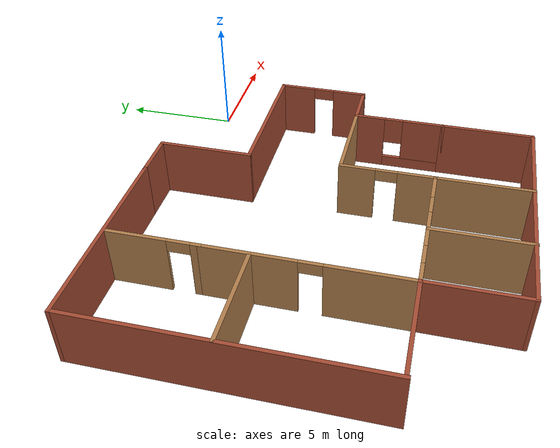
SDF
<?xml version='1.0'?>
<sdf version='1.6'>
  <model name='Building'>
    <pose frame=''>-7.76735 -6.83416 0 0 -0 0</pose>
    <link name='Wall_0'>
      <collision name='Wall_0_Collision'>
        <geometry>
          <box>
            <size>2 0.15 2.5</size>
          </box>
        </geometry>
        <pose frame=''>0 0 1.25 0 -0 0</pose>
      </collision>
      <visual name='Wall_0_Visual'>
        <pose frame=''>0 0 1.25 0 -0 0</pose>
        <geometry>
          <box>
            <size>2 0.15 2.5</size>
          </box>
        </geometry>
        <material>
          <script>
            <uri>file://media/materials/scripts/gazebo.material</uri>
            <name>Gazebo/Bricks</name>
          </script>
          <ambient>1 1 1 1</ambient>
        </material>
      </visual>
      <pose frame=''>1 7.71108 0 0 -0 0</pose>
    </link>
    <link name='Wall_1'>
      <collision name='Wall_1_Collision'>
        <geometry>
          <box>
            <size>4 0.15 2.5</size>
          </box>
        </geometry>
        <pose frame=''>0 0 1.25 0 -0 0</pose>
      </collision>
      <visual name='Wall_1_Visual'>
        <pose frame=''>0 0 1.25 0 -0 0</pose>
        <geometry>
          <box>
            <size>4 0.15 2.5</size>
          </box>
        </geometry>
        <material>
          <script>
            <uri>file://media/materials/scripts/gazebo.material</uri>
            <name>Gazebo/Bricks</name>
          </script>
          <ambient>1 1 1 1</ambient>
        </material>
      </visual>
      <pose frame=''>1.925 5.78608 0 0 0 -1.5708</pose>
    </link>
    <link name='Wall_10'>
      <collision name='Wall_10_Collision'>
        <geometry>
          <box>
            <size>6 0.15 2.5</size>
          </box>
        </geometry>
        <pose frame=''>0 0 1.25 0 -0 0</pose>
      </collision>
      <visual name='Wall_10_Visual'>
        <pose frame=''>0 0 1.25 0 -0 0</pose>
        <geometry>
          <box>
            <size>6 0.15 2.5</size>
          </box>
        </geometry>
        <material>
          <script>
            <uri>file://media/materials/scripts/gazebo.material</uri>
            <name>Gazebo/Bricks</name>
          </script>
          <ambient>1 1 1 1</ambient>
        </material>
      </visual>
      <pose frame=''>-0.849999 -7.68892 0 0 -0 3.14159</pose>
    </link>
    <link name='Wall_105'>
      <collision name='Wall_105_Collision'>
        <geometry>
          <box>
            <size>4 0.15 2.5</size>
          </box>
        </geometry>
        <pose frame=''>0 0 1.25 0 -0 0</pose>
      </collision>
      <visual name='Wall_105_Visual'>
        <pose frame=''>0 0 1.25 0 -0 0</pose>
        <geometry>
          <box>
            <size>4 0.15 2.5</size>
          </box>
        </geometry>
        <material>
          <script>
            <uri>file://media/materials/scripts/gazebo.material</uri>
            <name>Gazebo/Wood</name>
          </script>
          <ambient>0.760784 0.662745 0.627451 1</ambient>
        </material>
      </visual>
      <pose frame=''>2.075 -5.76392 0 0 0 -1.5708</pose>
    </link>
    <link name='Wall_109'>
      <collision name='Wall_109_Collision'>
        <geometry>
          <box>
            <size>4 0.15 2.5</size>
          </box>
        </geometry>
        <pose frame=''>0 0 1.25 0 -0 0</pose>
      </collision>
      <visual name='Wall_109_Visual'>
        <pose frame=''>0 0 1.25 0 -0 0</pose>
        <geometry>
          <box>
            <size>4 0.15 2.5</size>
          </box>
        </geometry>
        <material>
          <script>
            <uri>file://media/materials/scripts/gazebo.material</uri>
            <name>Gazebo/Wood</name>
          </script>
          <ambient>0.760784 0.662745 0.627451 1</ambient>
        </material>
      </visual>
      <pose frame=''>-1.05166 -5.78608 0 0 0 -1.5708</pose>
    </link>
    <link name='Wall_11'>
      <collision name='Wall_11_Collision'>
        <geometry>
          <box>
            <size>4 0.15 2.5</size>
          </box>
        </geometry>
        <pose frame=''>0 0 1.25 0 -0 0</pose>
      </collision>
      <visual name='Wall_11_Visual'>
        <pose frame=''>0 0 1.25 0 -0 0</pose>
        <geometry>
          <box>
            <size>4 0.15 2.5</size>
          </box>
        </geometry>
        <material>
          <script>
            <uri>file://media/materials/scripts/gazebo.material</uri>
            <name>Gazebo/Bricks</name>
          </script>
          <ambient>1 1 1 1</ambient>
        </material>
      </visual>
      <pose frame=''>-3.775 -5.76392 0 0 -0 1.5708</pose>
    </link>
    <link name='Wall_113'>
      <pose frame=''>-3.775 5.81108 0 0 -0 1.5708</pose>
      <visual name='Wall_113_Visual_0'>
        <pose frame=''>-1.66581 0 1.25 0 -0 0</pose>
        <geometry>
          <box>
            <size>0.418378 0.15 2.5</size>
          </box>
        </geometry>
        <material>
          <script>
            <uri>file://media/materials/scripts/gazebo.material</uri>
            <name>Gazebo/Wood</name>
          </script>
          <ambient>0.435294 0.796078 0.67451 1</ambient>
        </material>
      </visual>
      <collision name='Wall_113_Collision_0'>
        <geometry>
          <box>
            <size>0.418378 0.15 2.5</size>
          </box>
        </geometry>
        <pose frame=''>-1.66581 0 1.25 0 -0 0</pose>
      </collision>
      <visual name='Wall_113_Visual_1'>
        <pose frame=''>0.659189 0 1.25 0 -0 0</pose>
        <geometry>
          <box>
            <size>2.43162 0.15 2.5</size>
          </box>
        </geometry>
        <material>
          <script>
            <uri>file://media/materials/scripts/gazebo.material</uri>
            <name>Gazebo/Wood</name>
          </script>
          <ambient>0.435294 0.796078 0.67451 1</ambient>
        </material>
      </visual>
      <collision name='Wall_113_Collision_1'>
        <geometry>
          <box>
            <size>2.43162 0.15 2.5</size>
          </box>
        </geometry>
        <pose frame=''>0.659189 0 1.25 0 -0 0</pose>
      </collision>
      <visual name='Wall_113_Visual_2'>
        <pose frame=''>-1.00662 0 2.25 0 -0 0</pose>
        <geometry>
          <box>
            <size>0.9 0.15 0.5</size>
          </box>
        </geometry>
        <material>
          <script>
            <uri>file://media/materials/scripts/gazebo.material</uri>
            <name>Gazebo/Wood</name>
          </script>
          <ambient>0.435294 0.796078 0.67451 1</ambient>
        </material>
      </visual>
      <collision name='Wall_113_Collision_2'>
        <geometry>
          <box>
            <size>0.9 0.15 0.5</size>
          </box>
        </geometry>
        <pose frame=''>-1.00662 0 2.25 0 -0 0</pose>
      </collision>
    </link>
    <link name='Wall_115'>
      <collision name='Wall_115_Collision'>
        <geometry>
          <box>
            <size>4 0.15 2.5</size>
          </box>
        </geometry>
        <pose frame=''>0 0 1.25 0 -0 0</pose>
      </collision>
      <visual name='Wall_115_Visual'>
        <pose frame=''>0 0 1.25 0 -0 0</pose>
        <geometry>
          <box>
            <size>4 0.15 2.5</size>
          </box>
        </geometry>
        <material>
          <script>
            <uri>file://media/materials/scripts/gazebo.material</uri>
            <name>Gazebo/Wood</name>
          </script>
          <ambient>0.435294 0.796078 0.67451 1</ambient>
        </material>
      </visual>
      <pose frame=''>-5.82317 2.14798 0 0 -0 0</pose>
    </link>
    <link name='Wall_12'>
      <collision name='Wall_12_Collision'>
        <geometry>
          <box>
            <size>4 0.15 2.5</size>
          </box>
        </geometry>
        <pose frame=''>0 0 1.25 0 -0 0</pose>
      </collision>
      <visual name='Wall_12_Visual'>
        <pose frame=''>0 0 1.25 0 -0 0</pose>
        <geometry>
          <box>
            <size>4 0.15 2.5</size>
          </box>
        </geometry>
        <material>
          <script>
            <uri>file://media/materials/scripts/gazebo.material</uri>
            <name>Gazebo/Bricks</name>
          </script>
          <ambient>1 1 1 1</ambient>
        </material>
      </visual>
      <pose frame=''>-5.7 -3.83892 0 0 -0 3.14159</pose>
    </link>
    <link name='Wall_15'>
      <collision name='Wall_15_Collision'>
        <geometry>
          <box>
            <size>8 0.15 2.5</size>
          </box>
        </geometry>
        <pose frame=''>0 0 1.25 0 -0 0</pose>
      </collision>
      <visual name='Wall_15_Visual'>
        <pose frame=''>0 0 1.25 0 -0 0</pose>
        <geometry>
          <box>
            <size>8 0.15 2.5</size>
          </box>
        </geometry>
        <material>
          <script>
            <uri>file://media/materials/scripts/gazebo.material</uri>
            <name>Gazebo/Bricks</name>
          </script>
          <ambient>1 1 1 1</ambient>
        </material>
      </visual>
      <pose frame=''>-3.85 7.71108 0 0 -0 3.14159</pose>
    </link>
    <link name='Wall_16'>
      <collision name='Wall_16_Collision'>
        <geometry>
          <box>
            <size>11.75 0.15 2.5</size>
          </box>
        </geometry>
        <pose frame=''>0 0 1.25 0 -0 0</pose>
      </collision>
      <visual name='Wall_16_Visual'>
        <pose frame=''>0 0 1.25 0 -0 0</pose>
        <geometry>
          <box>
            <size>11.75 0.15 2.5</size>
          </box>
        </geometry>
        <material>
          <script>
            <uri>file://media/materials/scripts/gazebo.material</uri>
            <name>Gazebo/Bricks</name>
          </script>
          <ambient>1 1 1 1</ambient>
        </material>
      </visual>
      <pose frame=''>-7.775 1.91108 0 0 0 -1.5708</pose>
    </link>
    <link name='Wall_18'>
      <pose frame=''>-0.849999 -3.83892 0 0 -0 0</pose>
      <visual name='Wall_18_Visual_0'>
        <pose frame=''>-2.51905 0 1.25 0 -0 0</pose>
        <geometry>
          <box>
            <size>0.961894 0.15 2.5</size>
          </box>
        </geometry>
        <material>
          <script>
            <uri>file://media/materials/scripts/gazebo.material</uri>
            <name>Gazebo/Wood</name>
          </script>
          <ambient>0.760784 0.662745 0.627451 1</ambient>
        </material>
      </visual>
      <collision name='Wall_18_Collision_0'>
        <geometry>
          <box>
            <size>0.961894 0.15 2.5</size>
          </box>
        </geometry>
        <pose frame=''>-2.51905 0 1.25 0 -0 0</pose>
      </collision>
      <visual name='Wall_18_Visual_1'>
        <pose frame=''>-0.191308 0 1.25 0 -0 0</pose>
        <geometry>
          <box>
            <size>1.8936 0.15 2.5</size>
          </box>
        </geometry>
        <material>
          <script>
            <uri>file://media/materials/scripts/gazebo.material</uri>
            <name>Gazebo/Wood</name>
          </script>
          <ambient>0.760784 0.662745 0.627451 1</ambient>
        </material>
      </visual>
      <collision name='Wall_18_Collision_1'>
        <geometry>
          <box>
            <size>1.8936 0.15 2.5</size>
          </box>
        </geometry>
        <pose frame=''>-0.191308 0 1.25 0 -0 0</pose>
      </collision>
      <visual name='Wall_18_Visual_2'>
        <pose frame=''>2.32775 0 1.25 0 -0 0</pose>
        <geometry>
          <box>
            <size>1.34451 0.15 2.5</size>
          </box>
        </geometry>
        <material>
          <script>
            <uri>file://media/materials/scripts/gazebo.material</uri>
            <name>Gazebo/Wood</name>
          </script>
          <ambient>0.760784 0.662745 0.627451 1</ambient>
        </material>
      </visual>
      <collision name='Wall_18_Collision_2'>
        <geometry>
          <box>
            <size>1.34451 0.15 2.5</size>
          </box>
        </geometry>
        <pose frame=''>2.32775 0 1.25 0 -0 0</pose>
      </collision>
      <visual name='Wall_18_Visual_3'>
        <pose frame=''>-1.58811 0 2.25 0 -0 0</pose>
        <geometry>
          <box>
            <size>0.9 0.15 0.5</size>
          </box>
        </geometry>
        <material>
          <script>
            <uri>file://media/materials/scripts/gazebo.material</uri>
            <name>Gazebo/Wood</name>
          </script>
          <ambient>0.760784 0.662745 0.627451 1</ambient>
        </material>
      </visual>
      <collision name='Wall_18_Collision_3'>
        <geometry>
          <box>
            <size>0.9 0.15 0.5</size>
          </box>
        </geometry>
        <pose frame=''>-1.58811 0 2.25 0 -0 0</pose>
      </collision>
      <visual name='Wall_18_Visual_4'>
        <pose frame=''>1.20549 0 2.25 0 -0 0</pose>
        <geometry>
          <box>
            <size>0.9 0.15 0.5</size>
          </box>
        </geometry>
        <material>
          <script>
            <uri>file://media/materials/scripts/gazebo.material</uri>
            <name>Gazebo/Wood</name>
          </script>
          <ambient>0.760784 0.662745 0.627451 1</ambient>
        </material>
      </visual>
      <collision name='Wall_18_Collision_4'>
        <geometry>
          <box>
            <size>0.9 0.15 0.5</size>
          </box>
        </geometry>
        <pose frame=''>1.20549 0 2.25 0 -0 0</pose>
      </collision>
    </link>
    <link name='Wall_2'>
      <collision name='Wall_2_Collision'>
        <geometry>
          <box>
            <size>6 0.15 2.5</size>
          </box>
        </geometry>
        <pose frame=''>0 0 1.25 0 -0 0</pose>
      </collision>
      <visual name='Wall_2_Visual'>
        <pose frame=''>0 0 1.25 0 -0 0</pose>
        <geometry>
          <box>
            <size>6 0.15 2.5</size>
          </box>
        </geometry>
        <material>
          <script>
            <uri>file://media/materials/scripts/gazebo.material</uri>
            <name>Gazebo/Bricks</name>
          </script>
          <ambient>1 1 1 1</ambient>
        </material>
      </visual>
      <pose frame=''>4.85 3.86108 0 0 -0 0</pose>
    </link>
    <link name='Wall_20'>
      <pose frame=''>-3.775 0.086083 0 0 -0 1.5708</pose>
      <visual name='Wall_20_Visual_0'>
        <pose frame=''>-2.29315 0 1.25 0 -0 0</pose>
        <geometry>
          <box>
            <size>3.41371 0.15 2.5</size>
          </box>
        </geometry>
        <material>
          <script>
            <uri>file://media/materials/scripts/gazebo.material</uri>
            <name>Gazebo/Wood</name>
          </script>
          <ambient>0.435294 0.796078 0.67451 1</ambient>
        </material>
      </visual>
      <collision name='Wall_20_Collision_0'>
        <geometry>
          <box>
            <size>3.41371 0.15 2.5</size>
          </box>
        </geometry>
        <pose frame=''>-2.29315 0 1.25 0 -0 0</pose>
      </collision>
      <visual name='Wall_20_Visual_1'>
        <pose frame=''>2.15685 0 1.25 0 -0 0</pose>
        <geometry>
          <box>
            <size>3.68629 0.15 2.5</size>
          </box>
        </geometry>
        <material>
          <script>
            <uri>file://media/materials/scripts/gazebo.material</uri>
            <name>Gazebo/Wood</name>
          </script>
          <ambient>0.435294 0.796078 0.67451 1</ambient>
        </material>
      </visual>
      <collision name='Wall_20_Collision_1'>
        <geometry>
          <box>
            <size>3.68629 0.15 2.5</size>
          </box>
        </geometry>
        <pose frame=''>2.15685 0 1.25 0 -0 0</pose>
      </collision>
      <visual name='Wall_20_Visual_2'>
        <pose frame=''>-0.136292 0 2.25 0 -0 0</pose>
        <geometry>
          <box>
            <size>0.9 0.15 0.5</size>
          </box>
        </geometry>
        <material>
          <script>
            <uri>file://media/materials/scripts/gazebo.material</uri>
            <name>Gazebo/Wood</name>
          </script>
          <ambient>0.435294 0.796078 0.67451 1</ambient>
        </material>
      </visual>
      <collision name='Wall_20_Collision_2'>
        <geometry>
          <box>
            <size>0.9 0.15 0.5</size>
          </box>
        </geometry>
        <pose frame=''>-0.136292 0 2.25 0 -0 0</pose>
      </collision>
    </link>
    <link name='Wall_23'>
      <pose frame=''>2.075 -1.91392 0 0 -0 1.5708</pose>
      <visual name='Wall_23_Visual_0'>
        <pose frame=''>-1.20497 0 1.25 0 -0 0</pose>
        <geometry>
          <box>
            <size>1.59006 0.15 2.5</size>
          </box>
        </geometry>
        <material>
          <script>
            <uri>file://media/materials/scripts/gazebo.material</uri>
            <name>Gazebo/Wood</name>
          </script>
          <ambient>0.760784 0.662745 0.627451 1</ambient>
        </material>
      </visual>
      <collision name='Wall_23_Collision_0'>
        <geometry>
          <box>
            <size>1.59006 0.15 2.5</size>
          </box>
        </geometry>
        <pose frame=''>-1.20497 0 1.25 0 -0 0</pose>
      </collision>
      <visual name='Wall_23_Visual_1'>
        <pose frame=''>1.24503 0 1.25 0 -0 0</pose>
        <geometry>
          <box>
            <size>1.50994 0.15 2.5</size>
          </box>
        </geometry>
        <material>
          <script>
            <uri>file://media/materials/scripts/gazebo.material</uri>
            <name>Gazebo/Wood</name>
          </script>
          <ambient>0.760784 0.662745 0.627451 1</ambient>
        </material>
      </visual>
      <collision name='Wall_23_Collision_1'>
        <geometry>
          <box>
            <size>1.50994 0.15 2.5</size>
          </box>
        </geometry>
        <pose frame=''>1.24503 0 1.25 0 -0 0</pose>
      </collision>
      <visual name='Wall_23_Visual_2'>
        <pose frame=''>0.040062 0 2.25 0 -0 0</pose>
        <geometry>
          <box>
            <size>0.9 0.15 0.5</size>
          </box>
        </geometry>
        <material>
          <script>
            <uri>file://media/materials/scripts/gazebo.material</uri>
            <name>Gazebo/Wood</name>
          </script>
          <ambient>0.760784 0.662745 0.627451 1</ambient>
        </material>
      </visual>
      <collision name='Wall_23_Collision_2'>
        <geometry>
          <box>
            <size>0.9 0.15 0.5</size>
          </box>
        </geometry>
        <pose frame=''>0.040062 0 2.25 0 -0 0</pose>
      </collision>
    </link>
    <link name='Wall_24'>
      <collision name='Wall_24_Collision'>
        <geometry>
          <box>
            <size>4 0.15 2.5</size>
          </box>
        </geometry>
        <pose frame=''>0 0 1.25 0 -0 0</pose>
      </collision>
      <visual name='Wall_24_Visual'>
        <pose frame=''>0 0 1.25 0 -0 0</pose>
        <geometry>
          <box>
            <size>4 0.15 2.5</size>
          </box>
        </geometry>
        <material>
          <script>
            <uri>file://media/materials/scripts/gazebo.material</uri>
            <name>Gazebo/Wood</name>
          </script>
          <ambient>0.760784 0.662745 0.627451 1</ambient>
        </material>
      </visual>
      <pose frame=''>4 0.011084 0 0 -0 0</pose>
    </link>
    <link name='Wall_26'>
      <collision name='Wall_26_Collision'>
        <geometry>
          <box>
            <size>4 0.15 2.5</size>
          </box>
        </geometry>
        <pose frame=''>0 0 1.25 0 -0 0</pose>
      </collision>
      <visual name='Wall_26_Visual'>
        <pose frame=''>0 0 1.25 0 -0 0</pose>
        <geometry>
          <box>
            <size>4 0.15 2.5</size>
          </box>
        </geometry>
        <material>
          <script>
            <uri>file://media/materials/scripts/gazebo.material</uri>
            <name>Gazebo/Bricks</name>
          </script>
          <ambient>1 1 1 1</ambient>
        </material>
      </visual>
      <pose frame=''>4 -7.68892 0 0 -0 0</pose>
    </link>
    <link name='Wall_27'>
      <collision name='Wall_27_Collision'>
        <geometry>
          <box>
            <size>4 0.15 2.5</size>
          </box>
        </geometry>
        <pose frame=''>0 0 1.25 0 -0 0</pose>
      </collision>
      <visual name='Wall_27_Visual'>
        <pose frame=''>0 0 1.25 0 -0 0</pose>
        <geometry>
          <box>
            <size>4 0.15 2.5</size>
          </box>
        </geometry>
        <material>
          <script>
            <uri>file://media/materials/scripts/gazebo.material</uri>
            <name>Gazebo/Bricks</name>
          </script>
          <ambient>1 1 1 1</ambient>
        </material>
      </visual>
      <pose frame=''>5.925 -5.76392 0 0 -0 1.5708</pose>
    </link>
    <link name='Wall_3'>
      <pose frame=''>7.775 1.93608 0 0 0 -1.5708</pose>
      <visual name='Wall_3_Visual_0'>
        <pose frame=''>-1.19927 0 1.25 0 -0 0</pose>
        <geometry>
          <box>
            <size>1.60146 0.15 2.5</size>
          </box>
        </geometry>
        <material>
          <script>
            <uri>file://media/materials/scripts/gazebo.material</uri>
            <name>Gazebo/Bricks</name>
          </script>
          <ambient>1 1 1 1</ambient>
        </material>
      </visual>
      <collision name='Wall_3_Collision_0'>
        <geometry>
          <box>
            <size>1.60146 0.15 2.5</size>
          </box>
        </geometry>
        <pose frame=''>-1.19927 0 1.25 0 -0 0</pose>
      </collision>
      <visual name='Wall_3_Visual_1'>
        <pose frame=''>1.25073 0 1.25 0 -0 0</pose>
        <geometry>
          <box>
            <size>1.49854 0.15 2.5</size>
          </box>
        </geometry>
        <material>
          <script>
            <uri>file://media/materials/scripts/gazebo.material</uri>
            <name>Gazebo/Bricks</name>
          </script>
          <ambient>1 1 1 1</ambient>
        </material>
      </visual>
      <collision name='Wall_3_Collision_1'>
        <geometry>
          <box>
            <size>1.49854 0.15 2.5</size>
          </box>
        </geometry>
        <pose frame=''>1.25073 0 1.25 0 -0 0</pose>
      </collision>
      <visual name='Wall_3_Visual_2'>
        <pose frame=''>0.051459 0 2.25 0 -0 0</pose>
        <geometry>
          <box>
            <size>0.9 0.15 0.5</size>
          </box>
        </geometry>
        <material>
          <script>
            <uri>file://media/materials/scripts/gazebo.material</uri>
            <name>Gazebo/Bricks</name>
          </script>
          <ambient>1 1 1 1</ambient>
        </material>
      </visual>
      <collision name='Wall_3_Collision_2'>
        <geometry>
          <box>
            <size>0.9 0.15 0.5</size>
          </box>
        </geometry>
        <pose frame=''>0.051459 0 2.25 0 -0 0</pose>
      </collision>
    </link>
    <link name='Wall_4'>
      <collision name='Wall_4_Collision'>
        <geometry>
          <box>
            <size>2 0.15 2.5</size>
          </box>
        </geometry>
        <pose frame=''>0 0 1.25 0 -0 0</pose>
      </collision>
      <visual name='Wall_4_Visual'>
        <pose frame=''>0 0 1.25 0 -0 0</pose>
        <geometry>
          <box>
            <size>2 0.15 2.5</size>
          </box>
        </geometry>
        <material>
          <script>
            <uri>file://media/materials/scripts/gazebo.material</uri>
            <name>Gazebo/Bricks</name>
          </script>
          <ambient>1 1 1 1</ambient>
        </material>
      </visual>
      <pose frame=''>6.85 0.011084 0 0 -0 3.14159</pose>
    </link>
    <link name='Wall_6'>
      <pose frame=''>5.925 -1.91392 0 0 0 -1.5708</pose>
      <visual name='Wall_6_Visual_0'>
        <pose frame=''>-1.31823 0 1.25 0 -0 0</pose>
        <geometry>
          <box>
            <size>1.36353 0.15 2.5</size>
          </box>
        </geometry>
        <material>
          <script>
            <uri>file://media/materials/scripts/gazebo.material</uri>
            <name>Gazebo/Bricks</name>
          </script>
          <ambient>1 1 1 1</ambient>
        </material>
      </visual>
      <collision name='Wall_6_Collision_0'>
        <geometry>
          <box>
            <size>1.36353 0.15 2.5</size>
          </box>
        </geometry>
        <pose frame=''>-1.31823 0 1.25 0 -0 0</pose>
      </collision>
      <visual name='Wall_6_Visual_1'>
        <pose frame=''>0.681767 0 0.25 0 -0 0</pose>
        <geometry>
          <box>
            <size>2.63647 0.15 0.5</size>
          </box>
        </geometry>
        <material>
          <script>
            <uri>file://media/materials/scripts/gazebo.material</uri>
            <name>Gazebo/Bricks</name>
          </script>
          <ambient>1 1 1 1</ambient>
        </material>
      </visual>
      <collision name='Wall_6_Collision_1'>
        <geometry>
          <box>
            <size>2.63647 0.15 0.5</size>
          </box>
        </geometry>
        <pose frame=''>0.681767 0 0.25 0 -0 0</pose>
      </collision>
      <visual name='Wall_6_Visual_2'>
        <pose frame=''>1.08177 0 1.5 0 -0 0</pose>
        <geometry>
          <box>
            <size>1.83647 0.15 2</size>
          </box>
        </geometry>
        <material>
          <script>
            <uri>file://media/materials/scripts/gazebo.material</uri>
            <name>Gazebo/Bricks</name>
          </script>
          <ambient>1 1 1 1</ambient>
        </material>
      </visual>
      <collision name='Wall_6_Collision_2'>
        <geometry>
          <box>
            <size>1.83647 0.15 2</size>
          </box>
        </geometry>
        <pose frame=''>1.08177 0 1.5 0 -0 0</pose>
      </collision>
      <visual name='Wall_6_Visual_3'>
        <pose frame=''>-0.236466 0 1.9 0 -0 0</pose>
        <geometry>
          <box>
            <size>0.8 0.15 1.2</size>
          </box>
        </geometry>
        <material>
          <script>
            <uri>file://media/materials/scripts/gazebo.material</uri>
            <name>Gazebo/Bricks</name>
          </script>
          <ambient>1 1 1 1</ambient>
        </material>
      </visual>
      <collision name='Wall_6_Collision_3'>
        <geometry>
          <box>
            <size>0.8 0.15 1.2</size>
          </box>
        </geometry>
        <pose frame=''>-0.236466 0 1.9 0 -0 0</pose>
      </collision>
    </link>
    <static>1</static>
  </model>
</sdf>
